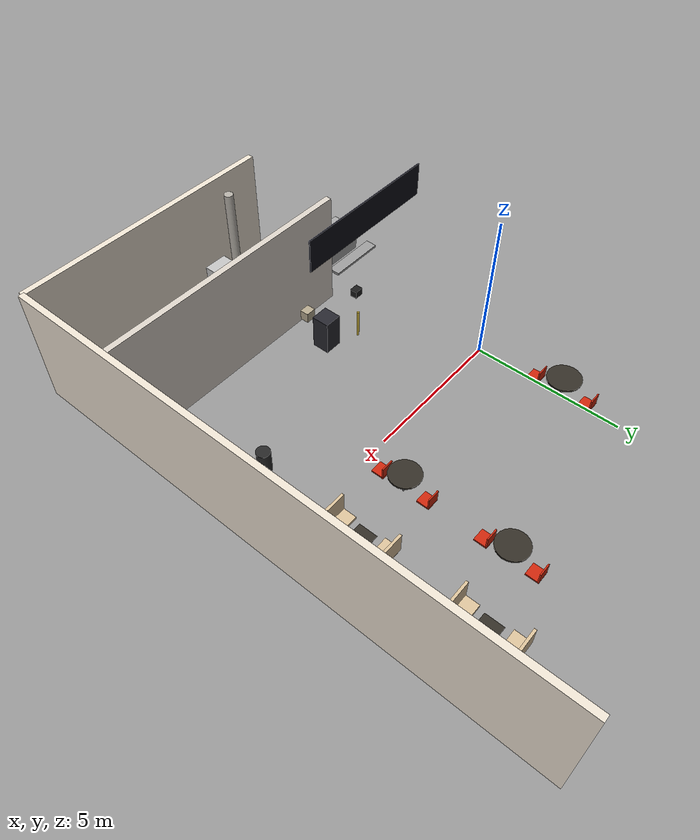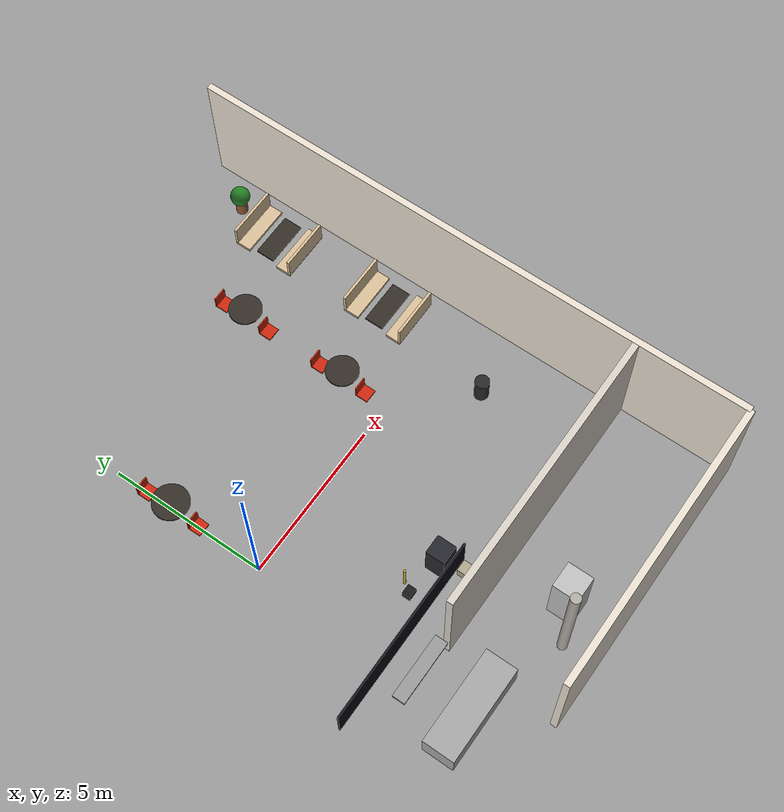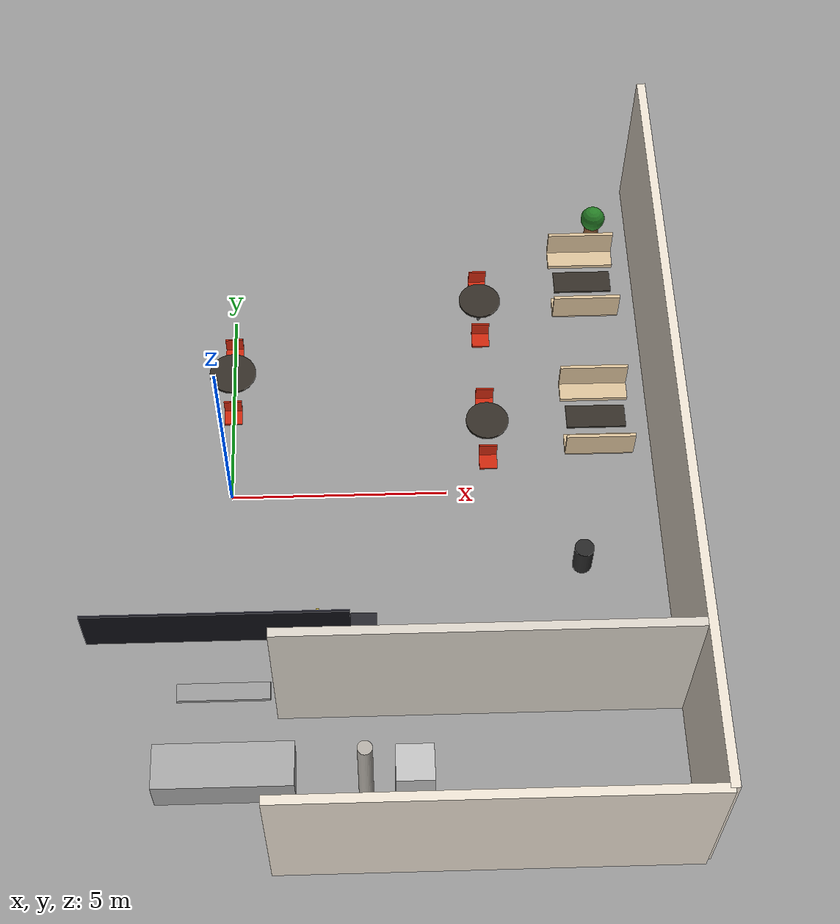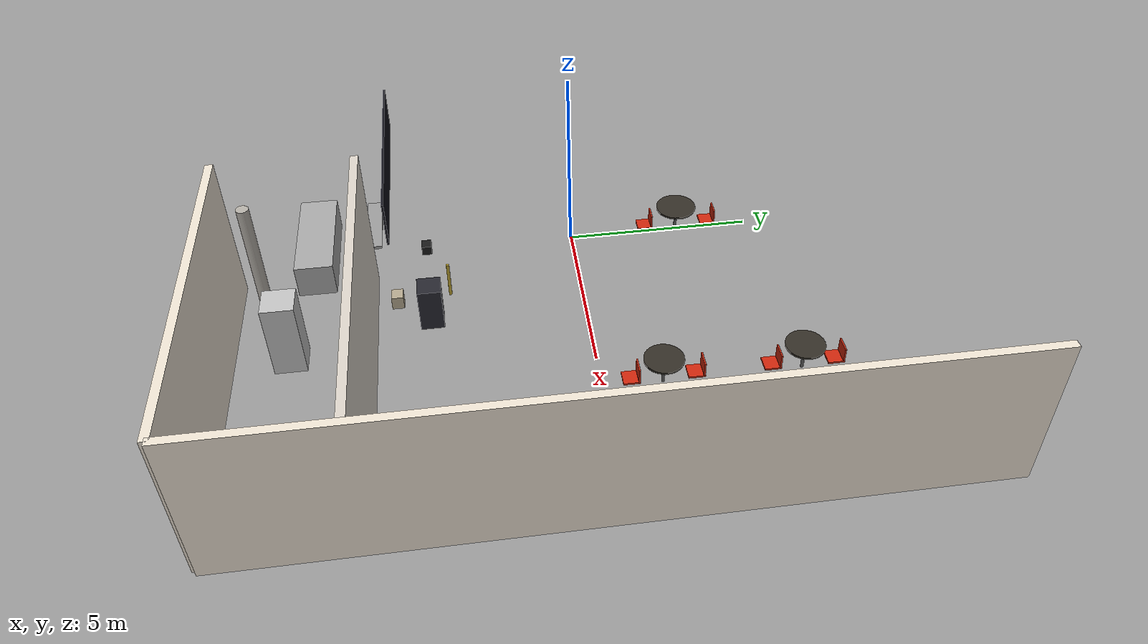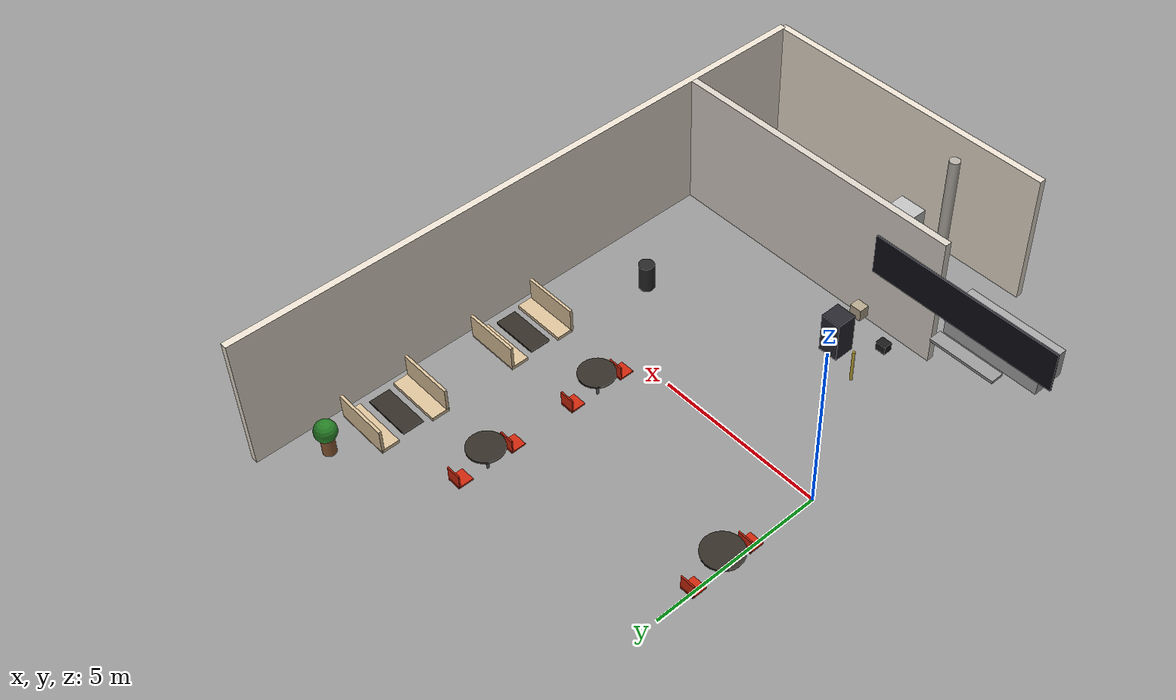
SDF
<sdf version="1.9">
 <world name="fast_food_cafe">
  <model name="wall_south_right">
   <static>true</static>
   <pose>5.5 -9 2.0 0 0 0</pose>
   <link name="link">
    <collision name="col">
     <geometry><box><size>9 0.2 4.0</size></box></geometry>
     <surface><friction><ode><mu>0.8</mu><mu2>0.8</mu2></ode></friction></surface>
    </collision>
    <visual name="vis">
     <geometry><box><size>9 0.2 4.0</size></box></geometry>
     <material>
      <ambient>0.92 0.88 0.82 1</ambient>
      <diffuse>0.92 0.88 0.82 1</diffuse>
      <specular>0.1 0.1 0.1 1</specular>
     </material>
    </visual>
    <inertial>
     <mass>300</mass>
     <inertia><ixx>1</ixx><iyy>1</iyy><izz>1</izz><ixy>0</ixy><ixz>0</ixz><iyz>0</iyz></inertia>
    </inertial>
   </link>
  </model>
  <model name="wall_east">
   <static>true</static>
   <pose>10 0 2.0 0 0 0</pose>
   <link name="link">
    <collision name="col">
     <geometry><box><size>0.2 18 4.0</size></box></geometry>
     <surface><friction><ode><mu>0.8</mu><mu2>0.8</mu2></ode></friction></surface>
    </collision>
    <visual name="vis">
     <geometry><box><size>0.2 18 4.0</size></box></geometry>
     <material>
      <ambient>0.92 0.88 0.82 1</ambient>
      <diffuse>0.92 0.88 0.82 1</diffuse>
      <specular>0.1 0.1 0.1 1</specular>
     </material>
    </visual>
    <inertial>
     <mass>500</mass>
     <inertia><ixx>1</ixx><iyy>1</iyy><izz>1</izz><ixy>0</ixy><ixz>0</ixz><iyz>0</iyz></inertia>
    </inertial>
   </link>
  </model>
  <model name="kitchen_partition_right">
   <static>true</static>
   <pose>5.5 -5.5 2.0 0 0 0</pose>
   <link name="link">
    <collision name="col">
     <geometry><box><size>8.8 0.2 4.0</size></box></geometry>
     <surface><friction><ode><mu>0.8</mu><mu2>0.8</mu2></ode></friction></surface>
    </collision>
    <visual name="vis">
     <geometry><box><size>8.8 0.2 4.0</size></box></geometry>
     <material>
      <ambient>0.85 0.82 0.78 1</ambient>
      <diffuse>0.85 0.82 0.78 1</diffuse>
      <specular>0.15 0.15 0.15 1</specular>
     </material>
    </visual>
    <inertial>
     <mass>250</mass>
     <inertia><ixx>1</ixx><iyy>1</iyy><izz>1</izz><ixy>0</ixy><ixz>0</ixz><iyz>0</iyz></inertia>
    </inertial>
   </link>
  </model>
  <model name="cash_register_2">
   <static>true</static>
   <pose>1.5 -4 1.25 0 0 0</pose>
   <link name="link">
    <collision name="col"><geometry><box><size>0.3 0.25 0.25</size></box></geometry></collision>
    <visual name="vis">
     <geometry><box><size>0.3 0.25 0.25</size></box></geometry>
     <material>
      <ambient>0.1 0.1 0.1 1</ambient>
      <diffuse>0.1 0.1 0.1 1</diffuse>
      <specular>0.4 0.4 0.4 1</specular>
     </material>
    </visual>
    <inertial>
     <mass>3</mass>
     <inertia><ixx>0.01</ixx><iyy>0.01</iyy><izz>0.01</izz><ixy>0</ixy><ixz>0</ixz><iyz>0</iyz></inertia>
    </inertial>
   </link>
  </model>
  <model name="menu_board">
   <static>true</static>
   <pose>0 -4.85 3.0 0 0 0</pose>
   <link name="link">
    <collision name="col"><geometry><box><size>5.5 0.05 1.2</size></box></geometry></collision>
    <visual name="vis">
     <geometry><box><size>5.5 0.05 1.2</size></box></geometry>
     <material>
      <ambient>0.05 0.05 0.08 1</ambient>
      <diffuse>0.05 0.05 0.08 1</diffuse>
      <specular>0.3 0.3 0.3 1</specular>
     </material>
    </visual>
    <inertial>
     <mass>20</mass>
     <inertia><ixx>1</ixx><iyy>1</iyy><izz>1</izz><ixy>0</ixy><ixz>0</ixz><iyz>0</iyz></inertia>
    </inertial>
   </link>
  </model>
  <model name="cooking_station">
   <static>true</static>
   <pose>0 -7 0.45 0 0 0</pose>
   <link name="link">
    <collision name="col">
     <geometry><box><size>3.0 1.0 0.9</size></box></geometry>
     <surface><friction><ode><mu>0.7</mu><mu2>0.7</mu2></ode></friction></surface>
    </collision>
    <visual name="vis">
     <geometry><box><size>3.0 1.0 0.9</size></box></geometry>
     <material>
      <ambient>0.65 0.65 0.65 1</ambient>
      <diffuse>0.65 0.65 0.65 1</diffuse>
      <specular>0.8 0.8 0.8 1</specular>
     </material>
    </visual>
    <inertial>
     <mass>150</mass>
     <inertia><ixx>5</ixx><iyy>5</iyy><izz>5</izz><ixy>0</ixy><ixz>0</ixz><iyz>0</iyz></inertia>
    </inertial>
   </link>
  </model>
  <model name="refrigerator">
   <static>true</static>
   <pose>4 -7.5 1.0 0 0 0</pose>
   <link name="link">
    <collision name="col">
     <geometry><box><size>0.8 0.8 2.0</size></box></geometry>
     <surface><friction><ode><mu>0.7</mu><mu2>0.7</mu2></ode></friction></surface>
    </collision>
    <visual name="vis">
     <geometry><box><size>0.8 0.8 2.0</size></box></geometry>
     <material>
      <ambient>0.75 0.75 0.75 1</ambient>
      <diffuse>0.75 0.75 0.75 1</diffuse>
      <specular>0.7 0.7 0.7 1</specular>
     </material>
    </visual>
    <inertial>
     <mass>120</mass>
     <inertia><ixx>10</ixx><iyy>10</iyy><izz>5</izz><ixy>0</ixy><ixz>0</ixz><iyz>0</iyz></inertia>
    </inertial>
   </link>
  </model>
  <model name="drink_station">
   <static>true</static>
   <pose>3 -4 0.6 0 0 0</pose>
   <link name="link">
    <collision name="col">
     <geometry><box><size>0.6 0.6 1.2</size></box></geometry>
     <surface><friction><ode><mu>0.7</mu><mu2>0.7</mu2></ode></friction></surface>
    </collision>
    <visual name="vis">
     <geometry><box><size>0.6 0.6 1.2</size></box></geometry>
     <material>
      <ambient>0.15 0.15 0.18 1</ambient>
      <diffuse>0.15 0.15 0.18 1</diffuse>
      <specular>0.5 0.5 0.5 1</specular>
     </material>
    </visual>
    <inertial>
     <mass>60</mass>
     <inertia><ixx>2</ixx><iyy>2</iyy><izz>2</izz><ixy>0</ixy><ixz>0</ixz><iyz>0</iyz></inertia>
    </inertial>
   </link>
  </model>
  <model name="round_table_3">
   <static>true</static>
   <pose>6 5 0.37 0 0 0</pose>
   <link name="link">
    <collision name="col_top">
     <pose>0 0 0.37 0 0 0</pose>
     <geometry><cylinder><radius>0.5</radius><length>0.05</length></cylinder></geometry>
    </collision>
    <collision name="col_leg">
     <geometry><cylinder><radius>0.04</radius><length>0.74</length></cylinder></geometry>
    </collision>
    <visual name="vis_top">
     <pose>0 0 0.37 0 0 0</pose>
     <geometry><cylinder><radius>0.5</radius><length>0.05</length></cylinder></geometry>
     <material>
      <ambient>0.2 0.18 0.15 1</ambient>
      <diffuse>0.2 0.18 0.15 1</diffuse>
      <specular>0.4 0.4 0.4 1</specular>
     </material>
    </visual>
    <visual name="vis_leg">
     <geometry><cylinder><radius>0.04</radius><length>0.74</length></cylinder></geometry>
     <material>
      <ambient>0.35 0.35 0.35 1</ambient>
      <diffuse>0.35 0.35 0.35 1</diffuse>
      <specular>0.6 0.6 0.6 1</specular>
     </material>
    </visual>
    <inertial>
     <mass>15</mass>
     <inertia><ixx>1</ixx><iyy>1</iyy><izz>1</izz><ixy>0</ixy><ixz>0</ixz><iyz>0</iyz></inertia>
    </inertial>
   </link>
  </model>
  <model name="chair_3a">
   <static>true</static>
   <pose>6 5.8 0.225 0 0 3.14159</pose>
   <link name="link">
    <collision name="col_seat"><geometry><box><size>0.42 0.42 0.05</size></box></geometry></collision>
    <collision name="col_back">
     <pose>0 -0.18 0.2 0 0 0</pose>
     <geometry><box><size>0.42 0.04 0.4</size></box></geometry>
    </collision>
    <visual name="vis_seat">
     <geometry><box><size>0.42 0.42 0.05</size></box></geometry>
     <material><ambient>0.8 0.15 0.05 1</ambient><diffuse>0.8 0.15 0.05 1</diffuse></material>
    </visual>
    <visual name="vis_back">
     <pose>0 -0.18 0.2 0 0 0</pose>
     <geometry><box><size>0.42 0.04 0.4</size></box></geometry>
     <material><ambient>0.8 0.15 0.05 1</ambient><diffuse>0.8 0.15 0.05 1</diffuse></material>
    </visual>
    <inertial>
     <mass>5</mass>
     <inertia><ixx>0.1</ixx><iyy>0.1</iyy><izz>0.1</izz><ixy>0</ixy><ixz>0</ixz><iyz>0</iyz></inertia>
    </inertial>
   </link>
  </model>
  <model name="chair_3b">
   <static>true</static>
   <pose>6 4.2 0.225 0 0 0</pose>
   <link name="link">
    <collision name="col_seat"><geometry><box><size>0.42 0.42 0.05</size></box></geometry></collision>
    <collision name="col_back">
     <pose>0 0.18 0.2 0 0 0</pose>
     <geometry><box><size>0.42 0.04 0.4</size></box></geometry>
    </collision>
    <visual name="vis_seat">
     <geometry><box><size>0.42 0.42 0.05</size></box></geometry>
     <material><ambient>0.8 0.15 0.05 1</ambient><diffuse>0.8 0.15 0.05 1</diffuse></material>
    </visual>
    <visual name="vis_back">
     <pose>0 0.18 0.2 0 0 0</pose>
     <geometry><box><size>0.42 0.04 0.4</size></box></geometry>
     <material><ambient>0.8 0.15 0.05 1</ambient><diffuse>0.8 0.15 0.05 1</diffuse></material>
    </visual>
    <inertial>
     <mass>5</mass>
     <inertia><ixx>0.1</ixx><iyy>0.1</iyy><izz>0.1</izz><ixy>0</ixy><ixz>0</ixz><iyz>0</iyz></inertia>
    </inertial>
   </link>
  </model>
  <model name="round_table_4">
   <static>true</static>
   <pose>6 1.5 0.37 0 0 0</pose>
   <link name="link">
    <collision name="col_top">
     <pose>0 0 0.37 0 0 0</pose>
     <geometry><cylinder><radius>0.5</radius><length>0.05</length></cylinder></geometry>
    </collision>
    <collision name="col_leg">
     <geometry><cylinder><radius>0.04</radius><length>0.74</length></cylinder></geometry>
    </collision>
    <visual name="vis_top">
     <pose>0 0 0.37 0 0 0</pose>
     <geometry><cylinder><radius>0.5</radius><length>0.05</length></cylinder></geometry>
     <material>
      <ambient>0.2 0.18 0.15 1</ambient>
      <diffuse>0.2 0.18 0.15 1</diffuse>
      <specular>0.4 0.4 0.4 1</specular>
     </material>
    </visual>
    <visual name="vis_leg">
     <geometry><cylinder><radius>0.04</radius><length>0.74</length></cylinder></geometry>
     <material>
      <ambient>0.35 0.35 0.35 1</ambient>
      <diffuse>0.35 0.35 0.35 1</diffuse>
      <specular>0.6 0.6 0.6 1</specular>
     </material>
    </visual>
    <inertial>
     <mass>15</mass>
     <inertia><ixx>1</ixx><iyy>1</iyy><izz>1</izz><ixy>0</ixy><ixz>0</ixz><iyz>0</iyz></inertia>
    </inertial>
   </link>
  </model>
  <model name="chair_4a">
   <static>true</static>
   <pose>6 2.3 0.225 0 0 3.14159</pose>
   <link name="link">
    <collision name="col_seat"><geometry><box><size>0.42 0.42 0.05</size></box></geometry></collision>
    <collision name="col_back">
     <pose>0 -0.18 0.2 0 0 0</pose>
     <geometry><box><size>0.42 0.04 0.4</size></box></geometry>
    </collision>
    <visual name="vis_seat">
     <geometry><box><size>0.42 0.42 0.05</size></box></geometry>
     <material><ambient>0.8 0.15 0.05 1</ambient><diffuse>0.8 0.15 0.05 1</diffuse></material>
    </visual>
    <visual name="vis_back">
     <pose>0 -0.18 0.2 0 0 0</pose>
     <geometry><box><size>0.42 0.04 0.4</size></box></geometry>
     <material><ambient>0.8 0.15 0.05 1</ambient><diffuse>0.8 0.15 0.05 1</diffuse></material>
    </visual>
    <inertial>
     <mass>5</mass>
     <inertia><ixx>0.1</ixx><iyy>0.1</iyy><izz>0.1</izz><ixy>0</ixy><ixz>0</ixz><iyz>0</iyz></inertia>
    </inertial>
   </link>
  </model>
  <model name="chair_4b">
   <static>true</static>
   <pose>6 0.7 0.225 0 0 0</pose>
   <link name="link">
    <collision name="col_seat"><geometry><box><size>0.42 0.42 0.05</size></box></geometry></collision>
    <collision name="col_back">
     <pose>0 0.18 0.2 0 0 0</pose>
     <geometry><box><size>0.42 0.04 0.4</size></box></geometry>
    </collision>
    <visual name="vis_seat">
     <geometry><box><size>0.42 0.42 0.05</size></box></geometry>
     <material><ambient>0.8 0.15 0.05 1</ambient><diffuse>0.8 0.15 0.05 1</diffuse></material>
    </visual>
    <visual name="vis_back">
     <pose>0 0.18 0.2 0 0 0</pose>
     <geometry><box><size>0.42 0.04 0.4</size></box></geometry>
     <material><ambient>0.8 0.15 0.05 1</ambient><diffuse>0.8 0.15 0.05 1</diffuse></material>
    </visual>
    <inertial>
     <mass>5</mass>
     <inertia><ixx>0.1</ixx><iyy>0.1</iyy><izz>0.1</izz><ixy>0</ixy><ixz>0</ixz><iyz>0</iyz></inertia>
    </inertial>
   </link>
  </model>
  <model name="round_table_center">
   <static>true</static>
   <pose>0 3 0.37 0 0 0</pose>
   <link name="link">
    <collision name="col_top">
     <pose>0 0 0.37 0 0 0</pose>
     <geometry><cylinder><radius>0.55</radius><length>0.05</length></cylinder></geometry>
    </collision>
    <collision name="col_leg">
     <geometry><cylinder><radius>0.04</radius><length>0.74</length></cylinder></geometry>
    </collision>
    <visual name="vis_top">
     <pose>0 0 0.37 0 0 0</pose>
     <geometry><cylinder><radius>0.55</radius><length>0.05</length></cylinder></geometry>
     <material>
      <ambient>0.2 0.18 0.15 1</ambient>
      <diffuse>0.2 0.18 0.15 1</diffuse>
      <specular>0.4 0.4 0.4 1</specular>
     </material>
    </visual>
    <visual name="vis_leg">
     <geometry><cylinder><radius>0.04</radius><length>0.74</length></cylinder></geometry>
     <material><ambient>0.35 0.35 0.35 1</ambient><diffuse>0.35 0.35 0.35 1</diffuse></material>
    </visual>
    <inertial>
     <mass>18</mass>
     <inertia><ixx>1</ixx><iyy>1</iyy><izz>1</izz><ixy>0</ixy><ixz>0</ixz><iyz>0</iyz></inertia>
    </inertial>
   </link>
  </model>
  <model name="chair_ca">
   <static>true</static>
   <pose>0 3.9 0.225 0 0 3.14159</pose>
   <link name="link">
    <collision name="col_seat"><geometry><box><size>0.42 0.42 0.05</size></box></geometry></collision>
    <collision name="col_back">
     <pose>0 -0.18 0.2 0 0 0</pose>
     <geometry><box><size>0.42 0.04 0.4</size></box></geometry>
    </collision>
    <visual name="vis_seat">
     <geometry><box><size>0.42 0.42 0.05</size></box></geometry>
     <material><ambient>0.8 0.15 0.05 1</ambient><diffuse>0.8 0.15 0.05 1</diffuse></material>
    </visual>
    <visual name="vis_back">
     <pose>0 -0.18 0.2 0 0 0</pose>
     <geometry><box><size>0.42 0.04 0.4</size></box></geometry>
     <material><ambient>0.8 0.15 0.05 1</ambient><diffuse>0.8 0.15 0.05 1</diffuse></material>
    </visual>
    <inertial>
     <mass>5</mass>
     <inertia><ixx>0.1</ixx><iyy>0.1</iyy><izz>0.1</izz><ixy>0</ixy><ixz>0</ixz><iyz>0</iyz></inertia>
    </inertial>
   </link>
  </model>
  <model name="chair_cb">
   <static>true</static>
   <pose>0 2.1 0.225 0 0 0</pose>
   <link name="link">
    <collision name="col_seat"><geometry><box><size>0.42 0.42 0.05</size></box></geometry></collision>
    <collision name="col_back">
     <pose>0 0.18 0.2 0 0 0</pose>
     <geometry><box><size>0.42 0.04 0.4</size></box></geometry>
    </collision>
    <visual name="vis_seat">
     <geometry><box><size>0.42 0.42 0.05</size></box></geometry>
     <material><ambient>0.8 0.15 0.05 1</ambient><diffuse>0.8 0.15 0.05 1</diffuse></material>
    </visual>
    <visual name="vis_back">
     <pose>0 0.18 0.2 0 0 0</pose>
     <geometry><box><size>0.42 0.04 0.4</size></box></geometry>
     <material><ambient>0.8 0.15 0.05 1</ambient><diffuse>0.8 0.15 0.05 1</diffuse></material>
    </visual>
    <inertial>
     <mass>5</mass>
     <inertia><ixx>0.1</ixx><iyy>0.1</iyy><izz>0.1</izz><ixy>0</ixy><ixz>0</ixz><iyz>0</iyz></inertia>
    </inertial>
   </link>
  </model>
  <model name="booth_bench_back_1">
   <static>true</static>
   <pose>8.6 6.5 0.4 0 0 0</pose>
   <link name="link">
    <collision name="col_seat"><geometry><box><size>1.6 0.5 0.1</size></box></geometry></collision>
    <collision name="col_back">
     <pose>0 0.22 0.35 0 0 0</pose>
     <geometry><box><size>1.6 0.08 0.7</size></box></geometry>
    </collision>
    <visual name="vis_seat">
     <geometry><box><size>1.6 0.5 0.1</size></box></geometry>
     <material>
      <ambient>0.85 0.75 0.6 1</ambient>
      <diffuse>0.85 0.75 0.6 1</diffuse>
      <specular>0.1 0.1 0.1 1</specular>
     </material>
    </visual>
    <visual name="vis_back">
     <pose>0 0.22 0.35 0 0 0</pose>
     <geometry><box><size>1.6 0.08 0.7</size></box></geometry>
     <material><ambient>0.85 0.75 0.6 1</ambient><diffuse>0.85 0.75 0.6 1</diffuse></material>
    </visual>
    <inertial>
     <mass>30</mass>
     <inertia><ixx>1</ixx><iyy>1</iyy><izz>1</izz><ixy>0</ixy><ixz>0</ixz><iyz>0</iyz></inertia>
    </inertial>
   </link>
  </model>
  <model name="booth_bench_front_1">
   <static>true</static>
   <pose>8.6 5.0 0.4 0 0 0</pose>
   <link name="link">
    <collision name="col_seat"><geometry><box><size>1.6 0.5 0.1</size></box></geometry></collision>
    <collision name="col_back">
     <pose>0 -0.22 0.35 0 0 0</pose>
     <geometry><box><size>1.6 0.08 0.7</size></box></geometry>
    </collision>
    <visual name="vis_seat">
     <geometry><box><size>1.6 0.5 0.1</size></box></geometry>
     <material><ambient>0.85 0.75 0.6 1</ambient><diffuse>0.85 0.75 0.6 1</diffuse></material>
    </visual>
    <visual name="vis_back">
     <pose>0 -0.22 0.35 0 0 0</pose>
     <geometry><box><size>1.6 0.08 0.7</size></box></geometry>
     <material><ambient>0.85 0.75 0.6 1</ambient><diffuse>0.85 0.75 0.6 1</diffuse></material>
    </visual>
    <inertial>
     <mass>30</mass>
     <inertia><ixx>1</ixx><iyy>1</iyy><izz>1</izz><ixy>0</ixy><ixz>0</ixz><iyz>0</iyz></inertia>
    </inertial>
   </link>
  </model>
  <model name="booth_table_1">
   <static>true</static>
   <pose>8.6 5.75 0.42 0 0 0</pose>
   <link name="link">
    <collision name="col"><geometry><box><size>1.4 0.6 0.05</size></box></geometry></collision>
    <visual name="vis">
     <geometry><box><size>1.4 0.6 0.05</size></box></geometry>
     <material>
      <ambient>0.2 0.18 0.15 1</ambient>
      <diffuse>0.2 0.18 0.15 1</diffuse>
      <specular>0.5 0.5 0.5 1</specular>
     </material>
    </visual>
    <inertial>
     <mass>12</mass>
     <inertia><ixx>0.5</ixx><iyy>0.5</iyy><izz>0.5</izz><ixy>0</ixy><ixz>0</ixz><iyz>0</iyz></inertia>
    </inertial>
   </link>
  </model>
  <model name="booth_bench_back_2">
   <static>true</static>
   <pose>8.6 2.5 0.4 0 0 0</pose>
   <link name="link">
    <collision name="col_seat"><geometry><box><size>1.6 0.5 0.1</size></box></geometry></collision>
    <collision name="col_back">
     <pose>0 0.22 0.35 0 0 0</pose>
     <geometry><box><size>1.6 0.08 0.7</size></box></geometry>
    </collision>
    <visual name="vis_seat">
     <geometry><box><size>1.6 0.5 0.1</size></box></geometry>
     <material><ambient>0.85 0.75 0.6 1</ambient><diffuse>0.85 0.75 0.6 1</diffuse></material>
    </visual>
    <visual name="vis_back">
     <pose>0 0.22 0.35 0 0 0</pose>
     <geometry><box><size>1.6 0.08 0.7</size></box></geometry>
     <material><ambient>0.85 0.75 0.6 1</ambient><diffuse>0.85 0.75 0.6 1</diffuse></material>
    </visual>
    <inertial>
     <mass>30</mass>
     <inertia><ixx>1</ixx><iyy>1</iyy><izz>1</izz><ixy>0</ixy><ixz>0</ixz><iyz>0</iyz></inertia>
    </inertial>
   </link>
  </model>
  <model name="booth_bench_front_2">
   <static>true</static>
   <pose>8.6 1.0 0.4 0 0 0</pose>
   <link name="link">
    <collision name="col_seat"><geometry><box><size>1.6 0.5 0.1</size></box></geometry></collision>
    <collision name="col_back">
     <pose>0 -0.22 0.35 0 0 0</pose>
     <geometry><box><size>1.6 0.08 0.7</size></box></geometry>
    </collision>
    <visual name="vis_seat">
     <geometry><box><size>1.6 0.5 0.1</size></box></geometry>
     <material><ambient>0.85 0.75 0.6 1</ambient><diffuse>0.85 0.75 0.6 1</diffuse></material>
    </visual>
    <visual name="vis_back">
     <pose>0 -0.22 0.35 0 0 0</pose>
     <geometry><box><size>1.6 0.08 0.7</size></box></geometry>
     <material><ambient>0.85 0.75 0.6 1</ambient><diffuse>0.85 0.75 0.6 1</diffuse></material>
    </visual>
    <inertial>
     <mass>30</mass>
     <inertia><ixx>1</ixx><iyy>1</iyy><izz>1</izz><ixy>0</ixy><ixz>0</ixz><iyz>0</iyz></inertia>
    </inertial>
   </link>
  </model>
  <model name="booth_table_2">
   <static>true</static>
   <pose>8.6 1.75 0.42 0 0 0</pose>
   <link name="link">
    <collision name="col"><geometry><box><size>1.4 0.6 0.05</size></box></geometry></collision>
    <visual name="vis">
     <geometry><box><size>1.4 0.6 0.05</size></box></geometry>
     <material>
      <ambient>0.2 0.18 0.15 1</ambient>
      <diffuse>0.2 0.18 0.15 1</diffuse>
      <specular>0.5 0.5 0.5 1</specular>
     </material>
    </visual>
    <inertial>
     <mass>12</mass>
     <inertia><ixx>0.5</ixx><iyy>0.5</iyy><izz>0.5</izz><ixy>0</ixy><ixz>0</ixz><iyz>0</iyz></inertia>
    </inertial>
   </link>
  </model>
  <model name="trash_bin_2">
   <static>false</static>
   <pose>8 -2 0.4 0 0 0</pose>
   <link name="link">
    <collision name="col">
     <geometry><cylinder><radius>0.22</radius><length>0.8</length></cylinder></geometry>
     <surface>
      <contact><ode><kp>1e5</kp><kd>10</kd></ode></contact>
      <friction><ode><mu>0.8</mu><mu2>0.8</mu2></ode></friction>
     </surface>
    </collision>
    <visual name="vis">
     <geometry><cylinder><radius>0.22</radius><length>0.8</length></cylinder></geometry>
     <material>
      <ambient>0.15 0.15 0.15 1</ambient>
      <diffuse>0.15 0.15 0.15 1</diffuse>
      <specular>0.3 0.3 0.3 1</specular>
     </material>
    </visual>
    <inertial>
     <mass>5</mass>
     <inertia><ixx>0.18</ixx><iyy>0.18</iyy><izz>0.12</izz><ixy>0</ixy><ixz>0</ixz><iyz>0</iyz></inertia>
    </inertial>
   </link>
  </model>
  <model name="condiment_stand">
   <static>true</static>
   <pose>3 -4.8 0.85 0 0 0</pose>
   <link name="link">
    <collision name="col"><geometry><box><size>0.35 0.3 0.35</size></box></geometry></collision>
    <visual name="vis">
     <geometry><box><size>0.35 0.3 0.35</size></box></geometry>
     <material>
      <ambient>0.7 0.65 0.55 1</ambient>
      <diffuse>0.7 0.65 0.55 1</diffuse>
      <specular>0.3 0.3 0.3 1</specular>
     </material>
    </visual>
    <inertial>
     <mass>2</mass>
     <inertia><ixx>0.02</ixx><iyy>0.02</iyy><izz>0.02</izz><ixy>0</ixy><ixz>0</ixz><iyz>0</iyz></inertia>
    </inertial>
   </link>
  </model>
  <model name="column_2">
   <static>true</static>
   <pose>3 -8 2.0 0 0 0</pose>
   <link name="link">
    <collision name="col">
     <geometry><cylinder><radius>0.15</radius><length>4.0</length></cylinder></geometry>
    </collision>
    <visual name="vis">
     <geometry><cylinder><radius>0.15</radius><length>4.0</length></cylinder></geometry>
     <material>
      <ambient>0.7 0.68 0.65 1</ambient>
      <diffuse>0.7 0.68 0.65 1</diffuse>
      <specular>0.2 0.2 0.2 1</specular>
     </material>
    </visual>
    <inertial>
     <mass>100</mass>
     <inertia><ixx>5</ixx><iyy>5</iyy><izz>5</izz><ixy>0</ixy><ixz>0</ixz><iyz>0</iyz></inertia>
    </inertial>
   </link>
  </model>
  <model name="plant_pot_2">
   <static>true</static>
   <pose>9 7.5 0.3 0 0 0</pose>
   <link name="link">
    <collision name="col_pot">
     <geometry><cylinder><radius>0.18</radius><length>0.6</length></cylinder></geometry>
    </collision>
    <visual name="vis_pot">
     <geometry><cylinder><radius>0.18</radius><length>0.6</length></cylinder></geometry>
     <material><ambient>0.55 0.35 0.2 1</ambient><diffuse>0.55 0.35 0.2 1</diffuse></material>
    </visual>
    <visual name="vis_plant">
     <pose>0 0 0.45 0 0 0</pose>
     <geometry><sphere><radius>0.3</radius></sphere></geometry>
     <material><ambient>0.15 0.5 0.15 1</ambient><diffuse>0.15 0.5 0.15 1</diffuse></material>
    </visual>
    <inertial>
     <mass>8</mass>
     <inertia><ixx>0.1</ixx><iyy>0.1</iyy><izz>0.1</izz><ixy>0</ixy><ixz>0</ixz><iyz>0</iyz></inertia>
    </inertial>
   </link>
  </model>
  <model name="pickup_shelf">
   <static>true</static>
   <pose>0 -5.4 1.0 0 0 0</pose>
   <link name="link">
    <collision name="col"><geometry><box><size>2.0 0.4 0.08</size></box></geometry></collision>
    <visual name="vis">
     <geometry><box><size>2.0 0.4 0.08</size></box></geometry>
     <material>
      <ambient>0.6 0.6 0.6 1</ambient>
      <diffuse>0.6 0.6 0.6 1</diffuse>
      <specular>0.5 0.5 0.5 1</specular>
     </material>
    </visual>
    <inertial>
     <mass>10</mass>
     <inertia><ixx>0.2</ixx><iyy>0.2</iyy><izz>0.2</izz><ixy>0</ixy><ixz>0</ixz><iyz>0</iyz></inertia>
    </inertial>
   </link>
  </model>
  <model name="stanchion_2">
   <static>true</static>
   <pose>2 -3.5 0.5 0 0 0</pose>
   <link name="link">
    <collision name="col">
     <geometry><cylinder><radius>0.04</radius><length>1.0</length></cylinder></geometry>
    </collision>
    <visual name="vis">
     <geometry><cylinder><radius>0.04</radius><length>1.0</length></cylinder></geometry>
     <material>
      <ambient>0.75 0.65 0.2 1</ambient>
      <diffuse>0.75 0.65 0.2 1</diffuse>
      <specular>0.8 0.8 0.3 1</specular>
     </material>
    </visual>
    <inertial>
     <mass>3</mass>
     <inertia><ixx>0.05</ixx><iyy>0.05</iyy><izz>0.02</izz><ixy>0</ixy><ixz>0</ixz><iyz>0</iyz></inertia>
    </inertial>
   </link>
  </model>
 </world>
</sdf>
